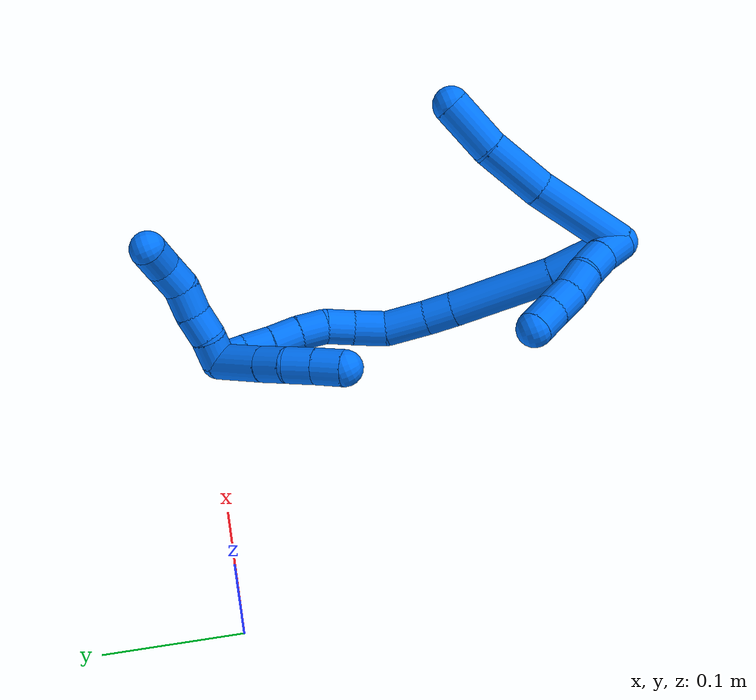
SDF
<sdf version="1.7">
 <world name="default">
  <model name="14">
   <static>0</static>
   <link name="14">
    <collision name="collision-cylinder-e_1_2_8">
     <pose>0.027859 0.001234 -0.019163 -3.07731 0.967291 -3.01931</pose>
     <geometry><cylinder><radius>0.0125</radius><length>0.067672</length></cylinder></geometry>
     <surface>
      <friction><ode><mu>1.16</mu><mu2>1.16</mu2><slip1>0</slip1><slip2>0</slip2></ode></friction>
      <contact><ode><kp>1e+06</kp><kd>1</kd><max_vel>0</max_vel><min_depth>0.001</min_depth></ode></contact>
     </surface>
    </collision>
    <visual name="visual-cylinder-e_1_2_8">
     <pose>0.027859 0.001234 -0.019163 -3.07731 0.967291 -3.01931</pose>
     <geometry><cylinder><radius>0.0125</radius><length>0.067672</length></cylinder></geometry>
     <material><ambient>0 0.462745 1 1</ambient></material>
    </visual>
    <collision name="collision-cylinder-e_2_8_9">
     <pose>0.07488 0.003827 -0.048896 -3.01363 1.06327 -2.92456</pose>
     <geometry><cylinder><radius>0.0125</radius><length>0.043852</length></cylinder></geometry>
     <surface>
      <friction><ode><mu>1.16</mu><mu2>1.16</mu2><slip1>0</slip1><slip2>0</slip2></ode></friction>
      <contact><ode><kp>1e+06</kp><kd>1</kd><max_vel>0</max_vel><min_depth>0.001</min_depth></ode></contact>
     </surface>
    </collision>
    <visual name="visual-cylinder-e_2_8_9">
     <pose>0.07488 0.003827 -0.048896 -3.01363 1.06327 -2.92456</pose>
     <geometry><cylinder><radius>0.0125</radius><length>0.043852</length></cylinder></geometry>
     <material><ambient>0 0.462745 1 1</ambient></material>
    </visual>
    <collision name="collision-cylinder-e_3_9_6">
     <pose>0.112065 0.004682 -0.066175 3.06637 1.2135 3.03327</pose>
     <geometry><cylinder><radius>0.0125</radius><length>0.038476</length></cylinder></geometry>
     <surface>
      <friction><ode><mu>1.16</mu><mu2>1.16</mu2><slip1>0</slip1><slip2>0</slip2></ode></friction>
      <contact><ode><kp>1e+06</kp><kd>1</kd><max_vel>0</max_vel><min_depth>0.001</min_depth></ode></contact>
     </surface>
    </collision>
    <visual name="visual-cylinder-e_3_9_6">
     <pose>0.112065 0.004682 -0.066175 3.06637 1.2135 3.03327</pose>
     <geometry><cylinder><radius>0.0125</radius><length>0.038476</length></cylinder></geometry>
     <material><ambient>0 0.462745 1 1</ambient></material>
    </visual>
    <collision name="collision-cylinder-e_1_2_10">
     <pose>-0.000822 0.005376 -0.008392 -2.57183 -0.082245 0.279176</pose>
     <geometry><cylinder><radius>0.0125</radius><length>0.02</length></cylinder></geometry>
     <surface>
      <friction><ode><mu>1.16</mu><mu2>1.16</mu2><slip1>0</slip1><slip2>0</slip2></ode></friction>
      <contact><ode><kp>1e+06</kp><kd>1</kd><max_vel>0</max_vel><min_depth>0.001</min_depth></ode></contact>
     </surface>
    </collision>
    <visual name="visual-cylinder-e_1_2_10">
     <pose>-0.000822 0.005376 -0.008392 -2.57183 -0.082245 0.279176</pose>
     <geometry><cylinder><radius>0.0125</radius><length>0.02</length></cylinder></geometry>
     <material><ambient>0 0.462745 1 1</ambient></material>
    </visual>
    <collision name="collision-cylinder-e_2_10_11">
     <pose>-0.003496 0.016993 -0.024374 -2.4535 -0.186372 0.510301</pose>
     <geometry><cylinder><radius>0.0125</radius><length>0.02</length></cylinder></geometry>
     <surface>
      <friction><ode><mu>1.16</mu><mu2>1.16</mu2><slip1>0</slip1><slip2>0</slip2></ode></friction>
      <contact><ode><kp>1e+06</kp><kd>1</kd><max_vel>0</max_vel><min_depth>0.001</min_depth></ode></contact>
     </surface>
    </collision>
    <visual name="visual-cylinder-e_2_10_11">
     <pose>-0.003496 0.016993 -0.024374 -2.4535 -0.186372 0.510301</pose>
     <geometry><cylinder><radius>0.0125</radius><length>0.02</length></cylinder></geometry>
     <material><ambient>0 0.462745 1 1</ambient></material>
    </visual>
    <collision name="collision-cylinder-e_3_11_12">
     <pose>-0.008834 0.02838 -0.039799 -2.56037 -0.355952 1.08296</pose>
     <geometry><cylinder><radius>0.0125</radius><length>0.02</length></cylinder></geometry>
     <surface>
      <friction><ode><mu>1.16</mu><mu2>1.16</mu2><slip1>0</slip1><slip2>0</slip2></ode></friction>
      <contact><ode><kp>1e+06</kp><kd>1</kd><max_vel>0</max_vel><min_depth>0.001</min_depth></ode></contact>
     </surface>
    </collision>
    <visual name="visual-cylinder-e_3_11_12">
     <pose>-0.008834 0.02838 -0.039799 -2.56037 -0.355952 1.08296</pose>
     <geometry><cylinder><radius>0.0125</radius><length>0.02</length></cylinder></geometry>
     <material><ambient>0 0.462745 1 1</ambient></material>
    </visual>
    <collision name="collision-cylinder-e_4_12_13">
     <pose>-0.014193 0.039101 -0.055721 -2.53811 -0.188555 0.589892</pose>
     <geometry><cylinder><radius>0.0125</radius><length>0.02</length></cylinder></geometry>
     <surface>
      <friction><ode><mu>1.16</mu><mu2>1.16</mu2><slip1>0</slip1><slip2>0</slip2></ode></friction>
      <contact><ode><kp>1e+06</kp><kd>1</kd><max_vel>0</max_vel><min_depth>0.001</min_depth></ode></contact>
     </surface>
    </collision>
    <visual name="visual-cylinder-e_4_12_13">
     <pose>-0.014193 0.039101 -0.055721 -2.53811 -0.188555 0.589892</pose>
     <geometry><cylinder><radius>0.0125</radius><length>0.02</length></cylinder></geometry>
     <material><ambient>0 0.462745 1 1</ambient></material>
    </visual>
    <collision name="collision-cylinder-e_5_13_5">
     <pose>-0.017902 0.050789 -0.071506 -2.47037 -0.1845 0.51851</pose>
     <geometry><cylinder><radius>0.0125</radius><length>0.02</length></cylinder></geometry>
     <surface>
      <friction><ode><mu>1.16</mu><mu2>1.16</mu2><slip1>0</slip1><slip2>0</slip2></ode></friction>
      <contact><ode><kp>1e+06</kp><kd>1</kd><max_vel>0</max_vel><min_depth>0.001</min_depth></ode></contact>
     </surface>
    </collision>
    <visual name="visual-cylinder-e_5_13_5">
     <pose>-0.017902 0.050789 -0.071506 -2.47037 -0.1845 0.51851</pose>
     <geometry><cylinder><radius>0.0125</radius><length>0.02</length></cylinder></geometry>
     <material><ambient>0 0.462745 1 1</ambient></material>
    </visual>
    <collision name="collision-cylinder-e_1_2_14">
     <pose>-0.002562 -0.005035 -0.024777 2.94111 -0.10099 -0.931254</pose>
     <geometry><cylinder><radius>0.0125</radius><length>0.050827</length></cylinder></geometry>
     <surface>
      <friction><ode><mu>1.16</mu><mu2>1.16</mu2><slip1>0</slip1><slip2>0</slip2></ode></friction>
      <contact><ode><kp>1e+06</kp><kd>1</kd><max_vel>0</max_vel><min_depth>0.001</min_depth></ode></contact>
     </surface>
    </collision>
    <visual name="visual-cylinder-e_1_2_14">
     <pose>-0.002562 -0.005035 -0.024777 2.94111 -0.10099 -0.931254</pose>
     <geometry><cylinder><radius>0.0125</radius><length>0.050827</length></cylinder></geometry>
     <material><ambient>0 0.462745 1 1</ambient></material>
    </visual>
    <collision name="collision-cylinder-e_2_14_15">
     <pose>-0.00499 -0.018967 -0.084764 2.89409 0.003694 0.029697</pose>
     <geometry><cylinder><radius>0.0125</radius><length>0.072633</length></cylinder></geometry>
     <surface>
      <friction><ode><mu>1.16</mu><mu2>1.16</mu2><slip1>0</slip1><slip2>0</slip2></ode></friction>
      <contact><ode><kp>1e+06</kp><kd>1</kd><max_vel>0</max_vel><min_depth>0.001</min_depth></ode></contact>
     </surface>
    </collision>
    <visual name="visual-cylinder-e_2_14_15">
     <pose>-0.00499 -0.018967 -0.084764 2.89409 0.003694 0.029697</pose>
     <geometry><cylinder><radius>0.0125</radius><length>0.072633</length></cylinder></geometry>
     <material><ambient>0 0.462745 1 1</ambient></material>
    </visual>
    <collision name="collision-cylinder-e_3_15_16">
     <pose>-0.00446 -0.030101 -0.130103 2.92426 0.038195 0.346632</pose>
     <geometry><cylinder><radius>0.0125</radius><length>0.020762</length></cylinder></geometry>
     <surface>
      <friction><ode><mu>1.16</mu><mu2>1.16</mu2><slip1>0</slip1><slip2>0</slip2></ode></friction>
      <contact><ode><kp>1e+06</kp><kd>1</kd><max_vel>0</max_vel><min_depth>0.001</min_depth></ode></contact>
     </surface>
    </collision>
    <visual name="visual-cylinder-e_3_15_16">
     <pose>-0.00446 -0.030101 -0.130103 2.92426 0.038195 0.346632</pose>
     <geometry><cylinder><radius>0.0125</radius><length>0.020762</length></cylinder></geometry>
     <material><ambient>0 0.462745 1 1</ambient></material>
    </visual>
    <collision name="collision-cylinder-e_4_16_17">
     <pose>-0.002719 -0.034861 -0.15503 2.9727 0.089311 0.971411</pose>
     <geometry><cylinder><radius>0.0125</radius><length>0.030144</length></cylinder></geometry>
     <surface>
      <friction><ode><mu>1.16</mu><mu2>1.16</mu2><slip1>0</slip1><slip2>0</slip2></ode></friction>
      <contact><ode><kp>1e+06</kp><kd>1</kd><max_vel>0</max_vel><min_depth>0.001</min_depth></ode></contact>
     </surface>
    </collision>
    <visual name="visual-cylinder-e_4_16_17">
     <pose>-0.002719 -0.034861 -0.15503 2.9727 0.089311 0.971411</pose>
     <geometry><cylinder><radius>0.0125</radius><length>0.030144</length></cylinder></geometry>
     <material><ambient>0 0.462745 1 1</ambient></material>
    </visual>
    <collision name="collision-cylinder-e_5_17_18">
     <pose>0.003424 -0.037956 -0.180617 3.08864 0.418025 2.89315</pose>
     <geometry><cylinder><radius>0.0125</radius><length>0.023643</length></cylinder></geometry>
     <surface>
      <friction><ode><mu>1.16</mu><mu2>1.16</mu2><slip1>0</slip1><slip2>0</slip2></ode></friction>
      <contact><ode><kp>1e+06</kp><kd>1</kd><max_vel>0</max_vel><min_depth>0.001</min_depth></ode></contact>
     </surface>
    </collision>
    <visual name="visual-cylinder-e_5_17_18">
     <pose>0.003424 -0.037956 -0.180617 3.08864 0.418025 2.89315</pose>
     <geometry><cylinder><radius>0.0125</radius><length>0.023643</length></cylinder></geometry>
     <material><ambient>0 0.462745 1 1</ambient></material>
    </visual>
    <collision name="collision-cylinder-e_6_18_19">
     <pose>0.01298 -0.036636 -0.200489 -2.93626 0.473723 -2.33478</pose>
     <geometry><cylinder><radius>0.0125</radius><length>0.020852</length></cylinder></geometry>
     <surface>
      <friction><ode><mu>1.16</mu><mu2>1.16</mu2><slip1>0</slip1><slip2>0</slip2></ode></friction>
      <contact><ode><kp>1e+06</kp><kd>1</kd><max_vel>0</max_vel><min_depth>0.001</min_depth></ode></contact>
     </surface>
    </collision>
    <visual name="visual-cylinder-e_6_18_19">
     <pose>0.01298 -0.036636 -0.200489 -2.93626 0.473723 -2.33478</pose>
     <geometry><cylinder><radius>0.0125</radius><length>0.020852</length></cylinder></geometry>
     <material><ambient>0 0.462745 1 1</ambient></material>
    </visual>
    <collision name="collision-cylinder-e_7_19_20">
     <pose>0.019573 -0.032042 -0.219109 -2.86547 0.183227 -1.16844</pose>
     <geometry><cylinder><radius>0.0125</radius><length>0.020165</length></cylinder></geometry>
     <surface>
      <friction><ode><mu>1.16</mu><mu2>1.16</mu2><slip1>0</slip1><slip2>0</slip2></ode></friction>
      <contact><ode><kp>1e+06</kp><kd>1</kd><max_vel>0</max_vel><min_depth>0.001</min_depth></ode></contact>
     </surface>
    </collision>
    <visual name="visual-cylinder-e_7_19_20">
     <pose>0.019573 -0.032042 -0.219109 -2.86547 0.183227 -1.16844</pose>
     <geometry><cylinder><radius>0.0125</radius><length>0.020165</length></cylinder></geometry>
     <material><ambient>0 0.462745 1 1</ambient></material>
    </visual>
    <collision name="collision-cylinder-e_8_20_21">
     <pose>0.022255 -0.025754 -0.238443 -2.79076 0.080841 -0.44868</pose>
     <geometry><cylinder><radius>0.0125</radius><length>0.020931</length></cylinder></geometry>
     <surface>
      <friction><ode><mu>1.16</mu><mu2>1.16</mu2><slip1>0</slip1><slip2>0</slip2></ode></friction>
      <contact><ode><kp>1e+06</kp><kd>1</kd><max_vel>0</max_vel><min_depth>0.001</min_depth></ode></contact>
     </surface>
    </collision>
    <visual name="visual-cylinder-e_8_20_21">
     <pose>0.022255 -0.025754 -0.238443 -2.79076 0.080841 -0.44868</pose>
     <geometry><cylinder><radius>0.0125</radius><length>0.020931</length></cylinder></geometry>
     <material><ambient>0 0.462745 1 1</ambient></material>
    </visual>
    <collision name="collision-cylinder-e_9_21_22">
     <pose>0.024472 -0.019359 -0.257744 -2.85413 0.13754 -0.888383</pose>
     <geometry><cylinder><radius>0.0125</radius><length>0.020012</length></cylinder></geometry>
     <surface>
      <friction><ode><mu>1.16</mu><mu2>1.16</mu2><slip1>0</slip1><slip2>0</slip2></ode></friction>
      <contact><ode><kp>1e+06</kp><kd>1</kd><max_vel>0</max_vel><min_depth>0.001</min_depth></ode></contact>
     </surface>
    </collision>
    <visual name="visual-cylinder-e_9_21_22">
     <pose>0.024472 -0.019359 -0.257744 -2.85413 0.13754 -0.888383</pose>
     <geometry><cylinder><radius>0.0125</radius><length>0.020012</length></cylinder></geometry>
     <material><ambient>0 0.462745 1 1</ambient></material>
    </visual>
    <collision name="collision-cylinder-e_10_22_1">
     <pose>0.027065 -0.012282 -0.276228 -2.698 0.122221 -0.529904</pose>
     <geometry><cylinder><radius>0.0125</radius><length>0.020032</length></cylinder></geometry>
     <surface>
      <friction><ode><mu>1.16</mu><mu2>1.16</mu2><slip1>0</slip1><slip2>0</slip2></ode></friction>
      <contact><ode><kp>1e+06</kp><kd>1</kd><max_vel>0</max_vel><min_depth>0.001</min_depth></ode></contact>
     </surface>
    </collision>
    <visual name="visual-cylinder-e_10_22_1">
     <pose>0.027065 -0.012282 -0.276228 -2.698 0.122221 -0.529904</pose>
     <geometry><cylinder><radius>0.0125</radius><length>0.020032</length></cylinder></geometry>
     <material><ambient>0 0.462745 1 1</ambient></material>
    </visual>
    <collision name="collision-cylinder-e_1_1_23">
     <pose>0.023581 0.003181 -0.270379 -0.64675 -0.248057 0.083514</pose>
     <geometry><cylinder><radius>0.0125</radius><length>0.038335</length></cylinder></geometry>
     <surface>
      <friction><ode><mu>1.16</mu><mu2>1.16</mu2><slip1>0</slip1><slip2>0</slip2></ode></friction>
      <contact><ode><kp>1e+06</kp><kd>1</kd><max_vel>0</max_vel><min_depth>0.001</min_depth></ode></contact>
     </surface>
    </collision>
    <visual name="visual-cylinder-e_1_1_23">
     <pose>0.023581 0.003181 -0.270379 -0.64675 -0.248057 0.083514</pose>
     <geometry><cylinder><radius>0.0125</radius><length>0.038335</length></cylinder></geometry>
     <material><ambient>0 0.462745 1 1</ambient></material>
    </visual>
    <collision name="collision-cylinder-e_2_23_24">
     <pose>0.016586 0.020246 -0.247507 -0.630245 -0.225887 0.073917</pose>
     <geometry><cylinder><radius>0.0125</radius><length>0.020432</length></cylinder></geometry>
     <surface>
      <friction><ode><mu>1.16</mu><mu2>1.16</mu2><slip1>0</slip1><slip2>0</slip2></ode></friction>
      <contact><ode><kp>1e+06</kp><kd>1</kd><max_vel>0</max_vel><min_depth>0.001</min_depth></ode></contact>
     </surface>
    </collision>
    <visual name="visual-cylinder-e_2_23_24">
     <pose>0.016586 0.020246 -0.247507 -0.630245 -0.225887 0.073917</pose>
     <geometry><cylinder><radius>0.0125</radius><length>0.020432</length></cylinder></geometry>
     <material><ambient>0 0.462745 1 1</ambient></material>
    </visual>
    <collision name="collision-cylinder-e_3_24_25">
     <pose>0.01099 0.029952 -0.230475 -0.403573 -0.326398 0.067345</pose>
     <geometry><cylinder><radius>0.0125</radius><length>0.020638</length></cylinder></geometry>
     <surface>
      <friction><ode><mu>1.16</mu><mu2>1.16</mu2><slip1>0</slip1><slip2>0</slip2></ode></friction>
      <contact><ode><kp>1e+06</kp><kd>1</kd><max_vel>0</max_vel><min_depth>0.001</min_depth></ode></contact>
     </surface>
    </collision>
    <visual name="visual-cylinder-e_3_24_25">
     <pose>0.01099 0.029952 -0.230475 -0.403573 -0.326398 0.067345</pose>
     <geometry><cylinder><radius>0.0125</radius><length>0.020638</length></cylinder></geometry>
     <material><ambient>0 0.462745 1 1</ambient></material>
    </visual>
    <collision name="collision-cylinder-e_4_25_4">
     <pose>0.004163 0.037664 -0.212617 -0.411776 -0.348703 0.073539</pose>
     <geometry><cylinder><radius>0.0125</radius><length>0.020596</length></cylinder></geometry>
     <surface>
      <friction><ode><mu>1.16</mu><mu2>1.16</mu2><slip1>0</slip1><slip2>0</slip2></ode></friction>
      <contact><ode><kp>1e+06</kp><kd>1</kd><max_vel>0</max_vel><min_depth>0.001</min_depth></ode></contact>
     </surface>
    </collision>
    <visual name="visual-cylinder-e_4_25_4">
     <pose>0.004163 0.037664 -0.212617 -0.411776 -0.348703 0.073539</pose>
     <geometry><cylinder><radius>0.0125</radius><length>0.020596</length></cylinder></geometry>
     <material><ambient>0 0.462745 1 1</ambient></material>
    </visual>
    <collision name="collision-cylinder-e_1_1_26">
     <pose>0.037953 -0.005476 -0.284873 -1.43987 1.31183 -1.18734</pose>
     <geometry><cylinder><radius>0.0125</radius><length>0.02</length></cylinder></geometry>
     <surface>
      <friction><ode><mu>1.16</mu><mu2>1.16</mu2><slip1>0</slip1><slip2>0</slip2></ode></friction>
      <contact><ode><kp>1e+06</kp><kd>1</kd><max_vel>0</max_vel><min_depth>0.001</min_depth></ode></contact>
     </surface>
    </collision>
    <visual name="visual-cylinder-e_1_1_26">
     <pose>0.037953 -0.005476 -0.284873 -1.43987 1.31183 -1.18734</pose>
     <geometry><cylinder><radius>0.0125</radius><length>0.02</length></cylinder></geometry>
     <material><ambient>0 0.462745 1 1</ambient></material>
    </visual>
    <collision name="collision-cylinder-e_2_26_27">
     <pose>0.057491 -0.002183 -0.285949 -2.65009 1.41017 -2.56836</pose>
     <geometry><cylinder><radius>0.0125</radius><length>0.02</length></cylinder></geometry>
     <surface>
      <friction><ode><mu>1.16</mu><mu2>1.16</mu2><slip1>0</slip1><slip2>0</slip2></ode></friction>
      <contact><ode><kp>1e+06</kp><kd>1</kd><max_vel>0</max_vel><min_depth>0.001</min_depth></ode></contact>
     </surface>
    </collision>
    <visual name="visual-cylinder-e_2_26_27">
     <pose>0.057491 -0.002183 -0.285949 -2.65009 1.41017 -2.56836</pose>
     <geometry><cylinder><radius>0.0125</radius><length>0.02</length></cylinder></geometry>
     <material><ambient>0 0.462745 1 1</ambient></material>
    </visual>
    <collision name="collision-cylinder-e_3_27_28">
     <pose>0.07722 0.000232 -0.287097 -1.41422 1.40191 -1.24956</pose>
     <geometry><cylinder><radius>0.0125</radius><length>0.02</length></cylinder></geometry>
     <surface>
      <friction><ode><mu>1.16</mu><mu2>1.16</mu2><slip1>0</slip1><slip2>0</slip2></ode></friction>
      <contact><ode><kp>1e+06</kp><kd>1</kd><max_vel>0</max_vel><min_depth>0.001</min_depth></ode></contact>
     </surface>
    </collision>
    <visual name="visual-cylinder-e_3_27_28">
     <pose>0.07722 0.000232 -0.287097 -1.41422 1.40191 -1.24956</pose>
     <geometry><cylinder><radius>0.0125</radius><length>0.02</length></cylinder></geometry>
     <material><ambient>0 0.462745 1 1</ambient></material>
    </visual>
    <collision name="collision-cylinder-e_4_28_29">
     <pose>0.096231 0.005146 -0.289208 -2.20095 1.15632 -1.8179</pose>
     <geometry><cylinder><radius>0.0125</radius><length>0.02</length></cylinder></geometry>
     <surface>
      <friction><ode><mu>1.16</mu><mu2>1.16</mu2><slip1>0</slip1><slip2>0</slip2></ode></friction>
      <contact><ode><kp>1e+06</kp><kd>1</kd><max_vel>0</max_vel><min_depth>0.001</min_depth></ode></contact>
     </surface>
    </collision>
    <visual name="visual-cylinder-e_4_28_29">
     <pose>0.096231 0.005146 -0.289208 -2.20095 1.15632 -1.8179</pose>
     <geometry><cylinder><radius>0.0125</radius><length>0.02</length></cylinder></geometry>
     <material><ambient>0 0.462745 1 1</ambient></material>
    </visual>
    <collision name="collision-cylinder-e_5_29_3">
     <pose>0.113132 0.014595 -0.292845 -1.77201 0.886388 -1.05309</pose>
     <geometry><cylinder><radius>0.0125</radius><length>0.02</length></cylinder></geometry>
     <surface>
      <friction><ode><mu>1.16</mu><mu2>1.16</mu2><slip1>0</slip1><slip2>0</slip2></ode></friction>
      <contact><ode><kp>1e+06</kp><kd>1</kd><max_vel>0</max_vel><min_depth>0.001</min_depth></ode></contact>
     </surface>
    </collision>
    <visual name="visual-cylinder-e_5_29_3">
     <pose>0.113132 0.014595 -0.292845 -1.77201 0.886388 -1.05309</pose>
     <geometry><cylinder><radius>0.0125</radius><length>0.02</length></cylinder></geometry>
     <material><ambient>0 0.462745 1 1</ambient></material>
    </visual>
    <collision name="collision-sphere-3">
     <pose>0.12088 0.020789 -0.294108 0 -0 0</pose>
     <geometry><sphere><radius>0.0125</radius></sphere></geometry>
     <surface>
      <friction><ode><mu>1.16</mu><mu2>1.16</mu2><slip1>0</slip1><slip2>0</slip2></ode></friction>
      <contact><ode><kp>1e+06</kp><kd>1</kd><max_vel>0</max_vel><min_depth>0.001</min_depth></ode></contact>
     </surface>
    </collision>
    <visual name="visual-sphere-3">
     <pose>0.12088 0.020789 -0.294108 0 -0 0</pose>
     <geometry><sphere><radius>0.0125</radius></sphere></geometry>
     <material><ambient>0 0.462745 1 1</ambient></material>
    </visual>
    <collision name="collision-sphere-29">
     <pose>0.105384 0.0084 -0.291581 0 -0 0</pose>
     <geometry><sphere><radius>0.0125</radius></sphere></geometry>
     <surface>
      <friction><ode><mu>1.16</mu><mu2>1.16</mu2><slip1>0</slip1><slip2>0</slip2></ode></friction>
      <contact><ode><kp>1e+06</kp><kd>1</kd><max_vel>0</max_vel><min_depth>0.001</min_depth></ode></contact>
     </surface>
    </collision>
    <visual name="visual-sphere-29">
     <pose>0.105384 0.0084 -0.291581 0 -0 0</pose>
     <geometry><sphere><radius>0.0125</radius></sphere></geometry>
     <material><ambient>0 0.462745 1 1</ambient></material>
    </visual>
    <collision name="collision-sphere-28">
     <pose>0.087078 0.001893 -0.286835 0 -0 0</pose>
     <geometry><sphere><radius>0.0125</radius></sphere></geometry>
     <surface>
      <friction><ode><mu>1.16</mu><mu2>1.16</mu2><slip1>0</slip1><slip2>0</slip2></ode></friction>
      <contact><ode><kp>1e+06</kp><kd>1</kd><max_vel>0</max_vel><min_depth>0.001</min_depth></ode></contact>
     </surface>
    </collision>
    <visual name="visual-sphere-28">
     <pose>0.087078 0.001893 -0.286835 0 -0 0</pose>
     <geometry><sphere><radius>0.0125</radius></sphere></geometry>
     <material><ambient>0 0.462745 1 1</ambient></material>
    </visual>
    <collision name="collision-sphere-27">
     <pose>0.067362 -0.001428 -0.287359 0 -0 0</pose>
     <geometry><sphere><radius>0.0125</radius></sphere></geometry>
     <surface>
      <friction><ode><mu>1.16</mu><mu2>1.16</mu2><slip1>0</slip1><slip2>0</slip2></ode></friction>
      <contact><ode><kp>1e+06</kp><kd>1</kd><max_vel>0</max_vel><min_depth>0.001</min_depth></ode></contact>
     </surface>
    </collision>
    <visual name="visual-sphere-27">
     <pose>0.067362 -0.001428 -0.287359 0 -0 0</pose>
     <geometry><sphere><radius>0.0125</radius></sphere></geometry>
     <material><ambient>0 0.462745 1 1</ambient></material>
    </visual>
    <collision name="collision-sphere-26">
     <pose>0.04762 -0.002937 -0.284539 0 -0 0</pose>
     <geometry><sphere><radius>0.0125</radius></sphere></geometry>
     <surface>
      <friction><ode><mu>1.16</mu><mu2>1.16</mu2><slip1>0</slip1><slip2>0</slip2></ode></friction>
      <contact><ode><kp>1e+06</kp><kd>1</kd><max_vel>0</max_vel><min_depth>0.001</min_depth></ode></contact>
     </surface>
    </collision>
    <visual name="visual-sphere-26">
     <pose>0.04762 -0.002937 -0.284539 0 -0 0</pose>
     <geometry><sphere><radius>0.0125</radius></sphere></geometry>
     <material><ambient>0 0.462745 1 1</ambient></material>
    </visual>
    <collision name="collision-sphere-4">
     <pose>0.000644 0.041537 -0.203748 0 -0 0</pose>
     <geometry><sphere><radius>0.0125</radius></sphere></geometry>
     <surface>
      <friction><ode><mu>1.16</mu><mu2>1.16</mu2><slip1>0</slip1><slip2>0</slip2></ode></friction>
      <contact><ode><kp>1e+06</kp><kd>1</kd><max_vel>0</max_vel><min_depth>0.001</min_depth></ode></contact>
     </surface>
    </collision>
    <visual name="visual-sphere-4">
     <pose>0.000644 0.041537 -0.203748 0 -0 0</pose>
     <geometry><sphere><radius>0.0125</radius></sphere></geometry>
     <material><ambient>0 0.462745 1 1</ambient></material>
    </visual>
    <collision name="collision-sphere-25">
     <pose>0.007681 0.03379 -0.221486 0 -0 0</pose>
     <geometry><sphere><radius>0.0125</radius></sphere></geometry>
     <surface>
      <friction><ode><mu>1.16</mu><mu2>1.16</mu2><slip1>0</slip1><slip2>0</slip2></ode></friction>
      <contact><ode><kp>1e+06</kp><kd>1</kd><max_vel>0</max_vel><min_depth>0.001</min_depth></ode></contact>
     </surface>
    </collision>
    <visual name="visual-sphere-25">
     <pose>0.007681 0.03379 -0.221486 0 -0 0</pose>
     <geometry><sphere><radius>0.0125</radius></sphere></geometry>
     <material><ambient>0 0.462745 1 1</ambient></material>
    </visual>
    <collision name="collision-sphere-24">
     <pose>0.014298 0.026114 -0.239464 0 -0 0</pose>
     <geometry><sphere><radius>0.0125</radius></sphere></geometry>
     <surface>
      <friction><ode><mu>1.16</mu><mu2>1.16</mu2><slip1>0</slip1><slip2>0</slip2></ode></friction>
      <contact><ode><kp>1e+06</kp><kd>1</kd><max_vel>0</max_vel><min_depth>0.001</min_depth></ode></contact>
     </surface>
    </collision>
    <visual name="visual-sphere-24">
     <pose>0.014298 0.026114 -0.239464 0 -0 0</pose>
     <geometry><sphere><radius>0.0125</radius></sphere></geometry>
     <material><ambient>0 0.462745 1 1</ambient></material>
    </visual>
    <collision name="collision-sphere-23">
     <pose>0.018875 0.014378 -0.255551 0 -0 0</pose>
     <geometry><sphere><radius>0.0125</radius></sphere></geometry>
     <surface>
      <friction><ode><mu>1.16</mu><mu2>1.16</mu2><slip1>0</slip1><slip2>0</slip2></ode></friction>
      <contact><ode><kp>1e+06</kp><kd>1</kd><max_vel>0</max_vel><min_depth>0.001</min_depth></ode></contact>
     </surface>
    </collision>
    <visual name="visual-sphere-23">
     <pose>0.018875 0.014378 -0.255551 0 -0 0</pose>
     <geometry><sphere><radius>0.0125</radius></sphere></geometry>
     <material><ambient>0 0.462745 1 1</ambient></material>
    </visual>
    <collision name="collision-sphere-1">
     <pose>0.028287 -0.008015 -0.285208 0 -0 0</pose>
     <geometry><sphere><radius>0.0125</radius></sphere></geometry>
     <surface>
      <friction><ode><mu>1.16</mu><mu2>1.16</mu2><slip1>0</slip1><slip2>0</slip2></ode></friction>
      <contact><ode><kp>1e+06</kp><kd>1</kd><max_vel>0</max_vel><min_depth>0.001</min_depth></ode></contact>
     </surface>
    </collision>
    <visual name="visual-sphere-1">
     <pose>0.028287 -0.008015 -0.285208 0 -0 0</pose>
     <geometry><sphere><radius>0.0125</radius></sphere></geometry>
     <material><ambient>0 0.462745 1 1</ambient></material>
    </visual>
    <collision name="collision-sphere-22">
     <pose>0.025844 -0.016549 -0.267249 0 -0 0</pose>
     <geometry><sphere><radius>0.0125</radius></sphere></geometry>
     <surface>
      <friction><ode><mu>1.16</mu><mu2>1.16</mu2><slip1>0</slip1><slip2>0</slip2></ode></friction>
      <contact><ode><kp>1e+06</kp><kd>1</kd><max_vel>0</max_vel><min_depth>0.001</min_depth></ode></contact>
     </surface>
    </collision>
    <visual name="visual-sphere-22">
     <pose>0.025844 -0.016549 -0.267249 0 -0 0</pose>
     <geometry><sphere><radius>0.0125</radius></sphere></geometry>
     <material><ambient>0 0.462745 1 1</ambient></material>
    </visual>
    <collision name="collision-sphere-21">
     <pose>0.0231 -0.022169 -0.248239 0 -0 0</pose>
     <geometry><sphere><radius>0.0125</radius></sphere></geometry>
     <surface>
      <friction><ode><mu>1.16</mu><mu2>1.16</mu2><slip1>0</slip1><slip2>0</slip2></ode></friction>
      <contact><ode><kp>1e+06</kp><kd>1</kd><max_vel>0</max_vel><min_depth>0.001</min_depth></ode></contact>
     </surface>
    </collision>
    <visual name="visual-sphere-21">
     <pose>0.0231 -0.022169 -0.248239 0 -0 0</pose>
     <geometry><sphere><radius>0.0125</radius></sphere></geometry>
     <material><ambient>0 0.462745 1 1</ambient></material>
    </visual>
    <collision name="collision-sphere-11">
     <pose>-0.005349 0.023234 -0.031965 0 -0 0</pose>
     <geometry><sphere><radius>0.0125</radius></sphere></geometry>
     <surface>
      <friction><ode><mu>1.16</mu><mu2>1.16</mu2><slip1>0</slip1><slip2>0</slip2></ode></friction>
      <contact><ode><kp>1e+06</kp><kd>1</kd><max_vel>0</max_vel><min_depth>0.001</min_depth></ode></contact>
     </surface>
    </collision>
    <visual name="visual-sphere-11">
     <pose>-0.005349 0.023234 -0.031965 0 -0 0</pose>
     <geometry><sphere><radius>0.0125</radius></sphere></geometry>
     <material><ambient>0 0.462745 1 1</ambient></material>
    </visual>
    <collision name="collision-sphere-10">
     <pose>-0.001643 0.010752 -0.016784 0 -0 0</pose>
     <geometry><sphere><radius>0.0125</radius></sphere></geometry>
     <surface>
      <friction><ode><mu>1.16</mu><mu2>1.16</mu2><slip1>0</slip1><slip2>0</slip2></ode></friction>
      <contact><ode><kp>1e+06</kp><kd>1</kd><max_vel>0</max_vel><min_depth>0.001</min_depth></ode></contact>
     </surface>
    </collision>
    <visual name="visual-sphere-10">
     <pose>-0.001643 0.010752 -0.016784 0 -0 0</pose>
     <geometry><sphere><radius>0.0125</radius></sphere></geometry>
     <material><ambient>0 0.462745 1 1</ambient></material>
    </visual>
    <collision name="collision-sphere-6">
     <pose>0.130088 0.004176 -0.072884 0 -0 0</pose>
     <geometry><sphere><radius>0.0125</radius></sphere></geometry>
     <surface>
      <friction><ode><mu>1.16</mu><mu2>1.16</mu2><slip1>0</slip1><slip2>0</slip2></ode></friction>
      <contact><ode><kp>1e+06</kp><kd>1</kd><max_vel>0</max_vel><min_depth>0.001</min_depth></ode></contact>
     </surface>
    </collision>
    <visual name="visual-sphere-6">
     <pose>0.130088 0.004176 -0.072884 0 -0 0</pose>
     <geometry><sphere><radius>0.0125</radius></sphere></geometry>
     <material><ambient>0 0.462745 1 1</ambient></material>
    </visual>
    <collision name="collision-sphere-9">
     <pose>0.094042 0.005187 -0.059465 0 -0 0</pose>
     <geometry><sphere><radius>0.0125</radius></sphere></geometry>
     <surface>
      <friction><ode><mu>1.16</mu><mu2>1.16</mu2><slip1>0</slip1><slip2>0</slip2></ode></friction>
      <contact><ode><kp>1e+06</kp><kd>1</kd><max_vel>0</max_vel><min_depth>0.001</min_depth></ode></contact>
     </surface>
    </collision>
    <visual name="visual-sphere-9">
     <pose>0.094042 0.005187 -0.059465 0 -0 0</pose>
     <geometry><sphere><radius>0.0125</radius></sphere></geometry>
     <material><ambient>0 0.462745 1 1</ambient></material>
    </visual>
    <collision name="collision-sphere-2">
     <geometry><sphere><radius>0.0125</radius></sphere></geometry>
     <surface>
      <friction><ode><mu>1.16</mu><mu2>1.16</mu2><slip1>0</slip1><slip2>0</slip2></ode></friction>
      <contact><ode><kp>1e+06</kp><kd>1</kd><max_vel>0</max_vel><min_depth>0.001</min_depth></ode></contact>
     </surface>
    </collision>
    <visual name="visual-sphere-2">
     <geometry><sphere><radius>0.0125</radius></sphere></geometry>
     <material><ambient>0 0.462745 1 1</ambient></material>
    </visual>
    <collision name="collision-sphere-19">
     <pose>0.017736 -0.034745 -0.209572 0 -0 0</pose>
     <geometry><sphere><radius>0.0125</radius></sphere></geometry>
     <surface>
      <friction><ode><mu>1.16</mu><mu2>1.16</mu2><slip1>0</slip1><slip2>0</slip2></ode></friction>
      <contact><ode><kp>1e+06</kp><kd>1</kd><max_vel>0</max_vel><min_depth>0.001</min_depth></ode></contact>
     </surface>
    </collision>
    <visual name="visual-sphere-19">
     <pose>0.017736 -0.034745 -0.209572 0 -0 0</pose>
     <geometry><sphere><radius>0.0125</radius></sphere></geometry>
     <material><ambient>0 0.462745 1 1</ambient></material>
    </visual>
    <collision name="collision-sphere-8">
     <pose>0.055718 0.002467 -0.038327 0 -0 0</pose>
     <geometry><sphere><radius>0.0125</radius></sphere></geometry>
     <surface>
      <friction><ode><mu>1.16</mu><mu2>1.16</mu2><slip1>0</slip1><slip2>0</slip2></ode></friction>
      <contact><ode><kp>1e+06</kp><kd>1</kd><max_vel>0</max_vel><min_depth>0.001</min_depth></ode></contact>
     </surface>
    </collision>
    <visual name="visual-sphere-8">
     <pose>0.055718 0.002467 -0.038327 0 -0 0</pose>
     <geometry><sphere><radius>0.0125</radius></sphere></geometry>
     <material><ambient>0 0.462745 1 1</ambient></material>
    </visual>
    <collision name="collision-sphere-12">
     <pose>-0.012319 0.033526 -0.047633 0 -0 0</pose>
     <geometry><sphere><radius>0.0125</radius></sphere></geometry>
     <surface>
      <friction><ode><mu>1.16</mu><mu2>1.16</mu2><slip1>0</slip1><slip2>0</slip2></ode></friction>
      <contact><ode><kp>1e+06</kp><kd>1</kd><max_vel>0</max_vel><min_depth>0.001</min_depth></ode></contact>
     </surface>
    </collision>
    <visual name="visual-sphere-12">
     <pose>-0.012319 0.033526 -0.047633 0 -0 0</pose>
     <geometry><sphere><radius>0.0125</radius></sphere></geometry>
     <material><ambient>0 0.462745 1 1</ambient></material>
    </visual>
    <collision name="collision-sphere-13">
     <pose>-0.016067 0.044675 -0.063809 0 -0 0</pose>
     <geometry><sphere><radius>0.0125</radius></sphere></geometry>
     <surface>
      <friction><ode><mu>1.16</mu><mu2>1.16</mu2><slip1>0</slip1><slip2>0</slip2></ode></friction>
      <contact><ode><kp>1e+06</kp><kd>1</kd><max_vel>0</max_vel><min_depth>0.001</min_depth></ode></contact>
     </surface>
    </collision>
    <visual name="visual-sphere-13">
     <pose>-0.016067 0.044675 -0.063809 0 -0 0</pose>
     <geometry><sphere><radius>0.0125</radius></sphere></geometry>
     <material><ambient>0 0.462745 1 1</ambient></material>
    </visual>
    <collision name="collision-sphere-5">
     <pose>-0.019736 0.056903 -0.079204 0 -0 0</pose>
     <geometry><sphere><radius>0.0125</radius></sphere></geometry>
     <surface>
      <friction><ode><mu>1.16</mu><mu2>1.16</mu2><slip1>0</slip1><slip2>0</slip2></ode></friction>
      <contact><ode><kp>1e+06</kp><kd>1</kd><max_vel>0</max_vel><min_depth>0.001</min_depth></ode></contact>
     </surface>
    </collision>
    <visual name="visual-sphere-5">
     <pose>-0.019736 0.056903 -0.079204 0 -0 0</pose>
     <geometry><sphere><radius>0.0125</radius></sphere></geometry>
     <material><ambient>0 0.462745 1 1</ambient></material>
    </visual>
    <collision name="collision-sphere-14">
     <pose>-0.005124 -0.01007 -0.049555 0 -0 0</pose>
     <geometry><sphere><radius>0.0125</radius></sphere></geometry>
     <surface>
      <friction><ode><mu>1.16</mu><mu2>1.16</mu2><slip1>0</slip1><slip2>0</slip2></ode></friction>
      <contact><ode><kp>1e+06</kp><kd>1</kd><max_vel>0</max_vel><min_depth>0.001</min_depth></ode></contact>
     </surface>
    </collision>
    <visual name="visual-sphere-14">
     <pose>-0.005124 -0.01007 -0.049555 0 -0 0</pose>
     <geometry><sphere><radius>0.0125</radius></sphere></geometry>
     <material><ambient>0 0.462745 1 1</ambient></material>
    </visual>
    <collision name="collision-sphere-15">
     <pose>-0.004856 -0.027864 -0.119974 0 -0 0</pose>
     <geometry><sphere><radius>0.0125</radius></sphere></geometry>
     <surface>
      <friction><ode><mu>1.16</mu><mu2>1.16</mu2><slip1>0</slip1><slip2>0</slip2></ode></friction>
      <contact><ode><kp>1e+06</kp><kd>1</kd><max_vel>0</max_vel><min_depth>0.001</min_depth></ode></contact>
     </surface>
    </collision>
    <visual name="visual-sphere-15">
     <pose>-0.004856 -0.027864 -0.119974 0 -0 0</pose>
     <geometry><sphere><radius>0.0125</radius></sphere></geometry>
     <material><ambient>0 0.462745 1 1</ambient></material>
    </visual>
    <collision name="collision-sphere-16">
     <pose>-0.004063 -0.032337 -0.140232 0 -0 0</pose>
     <geometry><sphere><radius>0.0125</radius></sphere></geometry>
     <surface>
      <friction><ode><mu>1.16</mu><mu2>1.16</mu2><slip1>0</slip1><slip2>0</slip2></ode></friction>
      <contact><ode><kp>1e+06</kp><kd>1</kd><max_vel>0</max_vel><min_depth>0.001</min_depth></ode></contact>
     </surface>
    </collision>
    <visual name="visual-sphere-16">
     <pose>-0.004063 -0.032337 -0.140232 0 -0 0</pose>
     <geometry><sphere><radius>0.0125</radius></sphere></geometry>
     <material><ambient>0 0.462745 1 1</ambient></material>
    </visual>
    <collision name="collision-sphere-17">
     <pose>-0.001375 -0.037384 -0.169829 0 -0 0</pose>
     <geometry><sphere><radius>0.0125</radius></sphere></geometry>
     <surface>
      <friction><ode><mu>1.16</mu><mu2>1.16</mu2><slip1>0</slip1><slip2>0</slip2></ode></friction>
      <contact><ode><kp>1e+06</kp><kd>1</kd><max_vel>0</max_vel><min_depth>0.001</min_depth></ode></contact>
     </surface>
    </collision>
    <visual name="visual-sphere-17">
     <pose>-0.001375 -0.037384 -0.169829 0 -0 0</pose>
     <geometry><sphere><radius>0.0125</radius></sphere></geometry>
     <material><ambient>0 0.462745 1 1</ambient></material>
    </visual>
    <collision name="collision-sphere-18">
     <pose>0.008223 -0.038528 -0.191406 0 -0 0</pose>
     <geometry><sphere><radius>0.0125</radius></sphere></geometry>
     <surface>
      <friction><ode><mu>1.16</mu><mu2>1.16</mu2><slip1>0</slip1><slip2>0</slip2></ode></friction>
      <contact><ode><kp>1e+06</kp><kd>1</kd><max_vel>0</max_vel><min_depth>0.001</min_depth></ode></contact>
     </surface>
    </collision>
    <visual name="visual-sphere-18">
     <pose>0.008223 -0.038528 -0.191406 0 -0 0</pose>
     <geometry><sphere><radius>0.0125</radius></sphere></geometry>
     <material><ambient>0 0.462745 1 1</ambient></material>
    </visual>
    <collision name="collision-sphere-20">
     <pose>0.02141 -0.029339 -0.228647 0 -0 0</pose>
     <geometry><sphere><radius>0.0125</radius></sphere></geometry>
     <surface>
      <friction><ode><mu>1.16</mu><mu2>1.16</mu2><slip1>0</slip1><slip2>0</slip2></ode></friction>
      <contact><ode><kp>1e+06</kp><kd>1</kd><max_vel>0</max_vel><min_depth>0.001</min_depth></ode></contact>
     </surface>
    </collision>
    <visual name="visual-sphere-20">
     <pose>0.02141 -0.029339 -0.228647 0 -0 0</pose>
     <geometry><sphere><radius>0.0125</radius></sphere></geometry>
     <material><ambient>0 0.462745 1 1</ambient></material>
    </visual>
    <inertial>
     <pose>0.025798 -0.001826 -0.142242 0 -0 0</pose>
     <mass>0.75</mass>
     <inertia><ixx>4.7e-05</ixx><ixy>0</ixy><ixz>0</ixz><iyy>9e-06</iyy><iyz>0</iyz><izz>-7.3e-05</izz></inertia>
    </inertial>
   </link>
   <pose>0.154954 -0.287547 0.187083 1.1835 -0.786979 0.403231</pose>
  </model>
 </world>
</sdf>
